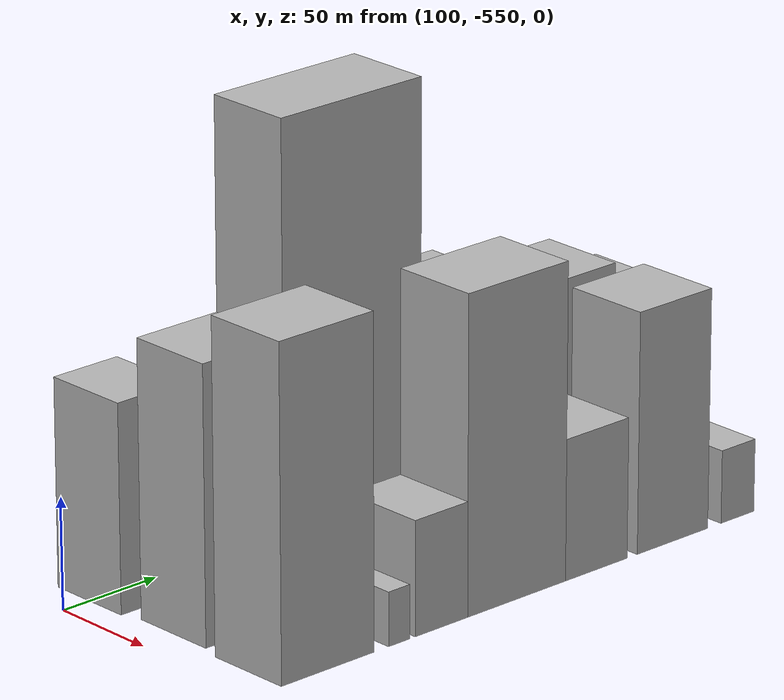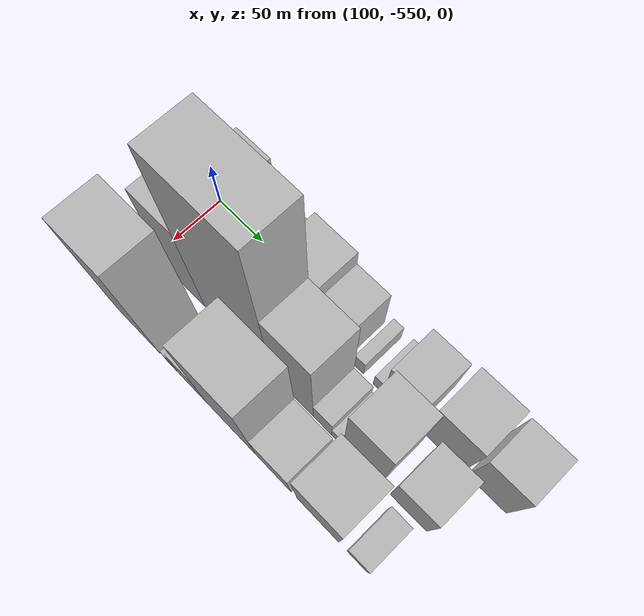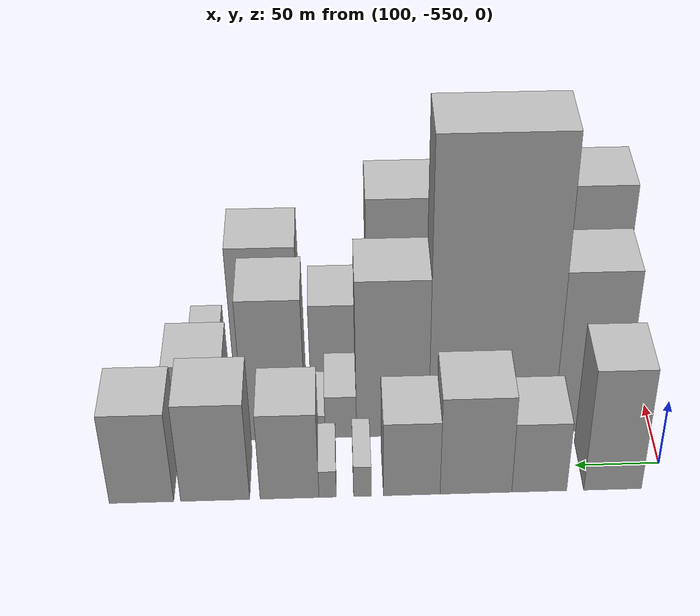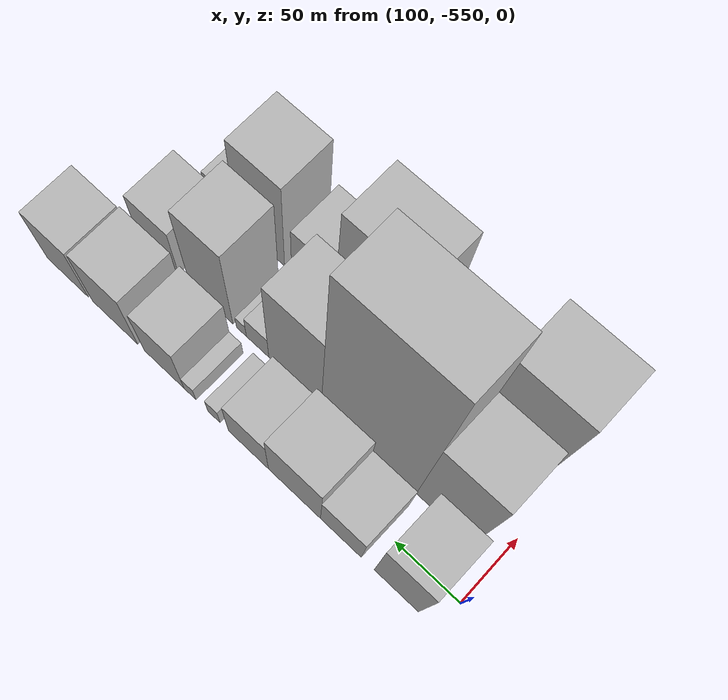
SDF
<sdf version="1.6">
 <world name="default">
  <model name="building_1">
   <static>1</static>
   <pose>100.0000 -519.0845 0 0.000000 0.000000 0.000000</pose>
   <link name="link">
    <pose>0 0 46.50 0 0 0</pose>
    <collision name="collision"><geometry><box><size>40.0000 33.8309 93.0000</size></box></geometry></collision>
    <visual name="visual">
     <cast_shadows>0</cast_shadows>
     <geometry><box><size>40.0000 33.8309 93.0000</size></box></geometry>
     <material>
      <script>
       <uri>model://HANNAS_wall/materials/scripts</uri>
       <uri>model://HANNAS_wall/materials/textures</uri>
       <name>vrc/HANNAS_wall</name>
      </script>
     </material>
    </visual>
   </link>
  </model>
  <model name="building_2">
   <static>1</static>
   <pose>100.0000 -476.1004 0 0.000000 0.000000 0.000000</pose>
   <link name="link">
    <pose>0 0 27.00 0 0 0</pose>
    <collision name="collision"><geometry><box><size>40.0000 32.1374 54.0000</size></box></geometry></collision>
    <visual name="visual">
     <cast_shadows>0</cast_shadows>
     <geometry><box><size>40.0000 32.1374 54.0000</size></box></geometry>
     <material>
      <script>
       <uri>model://HANNAS_wall/materials/scripts</uri>
       <uri>model://HANNAS_wall/materials/textures</uri>
       <name>vrc/HANNAS_wall</name>
      </script>
     </material>
    </visual>
   </link>
  </model>
  <model name="building_3">
   <static>1</static>
   <pose>100.0000 -439.1285 0 0.000000 0.000000 0.000000</pose>
   <link name="link">
    <pose>0 0 37.50 0 0 0</pose>
    <collision name="collision"><geometry><box><size>40.0000 41.8063 75.0000</size></box></geometry></collision>
    <visual name="visual">
     <cast_shadows>0</cast_shadows>
     <geometry><box><size>40.0000 41.8063 75.0000</size></box></geometry>
     <material>
      <script>
       <uri>model://HANNAS_wall/materials/scripts</uri>
       <uri>model://HANNAS_wall/materials/textures</uri>
       <name>vrc/HANNAS_wall</name>
      </script>
     </material>
    </visual>
   </link>
  </model>
  <model name="building_4">
   <static>1</static>
   <pose>100.0000 -401.7499 0 0.000000 0.000000 0.000000</pose>
   <link name="link">
    <pose>0 0 28.50 0 0 0</pose>
    <collision name="collision"><geometry><box><size>40.0000 32.9508 57.0000</size></box></geometry></collision>
    <visual name="visual">
     <cast_shadows>0</cast_shadows>
     <geometry><box><size>40.0000 32.9508 57.0000</size></box></geometry>
     <material>
      <script>
       <uri>model://HANNAS_wall/materials/scripts</uri>
       <uri>model://HANNAS_wall/materials/textures</uri>
       <name>vrc/HANNAS_wall</name>
      </script>
     </material>
    </visual>
   </link>
  </model>
  <model name="building_5">
   <static>1</static>
   <pose>100.0000 -373.0983 0 0.000000 0.000000 0.000000</pose>
   <link name="link">
    <pose>0 0 12.00 0 0 0</pose>
    <collision name="collision"><geometry><box><size>40.0000 10.3525 24.0000</size></box></geometry></collision>
    <visual name="visual">
     <cast_shadows>0</cast_shadows>
     <geometry><box><size>40.0000 10.3525 24.0000</size></box></geometry>
     <material>
      <script>
       <uri>model://HANNAS_wall/materials/scripts</uri>
       <uri>model://HANNAS_wall/materials/textures</uri>
       <name>vrc/HANNAS_wall</name>
      </script>
     </material>
    </visual>
   </link>
  </model>
  <model name="building_6">
   <static>1</static>
   <pose>100.0000 -352.8675 0 0.000000 0.000000 0.000000</pose>
   <link name="link">
    <pose>0 0 10.50 0 0 0</pose>
    <collision name="collision"><geometry><box><size>40.0000 10.1091 21.0000</size></box></geometry></collision>
    <visual name="visual">
     <cast_shadows>0</cast_shadows>
     <geometry><box><size>40.0000 10.1091 21.0000</size></box></geometry>
     <material>
      <script>
       <uri>model://HANNAS_wall/materials/scripts</uri>
       <uri>model://HANNAS_wall/materials/textures</uri>
       <name>vrc/HANNAS_wall</name>
      </script>
     </material>
    </visual>
   </link>
  </model>
  <model name="building_7">
   <static>1</static>
   <pose>100.0000 -330.7719 0 0.000000 0.000000 0.000000</pose>
   <link name="link">
    <pose>0 0 33.00 0 0 0</pose>
    <collision name="collision"><geometry><box><size>40.0000 34.0822 66.0000</size></box></geometry></collision>
    <visual name="visual">
     <cast_shadows>0</cast_shadows>
     <geometry><box><size>40.0000 34.0822 66.0000</size></box></geometry>
     <material>
      <script>
       <uri>model://HANNAS_wall/materials/scripts</uri>
       <uri>model://HANNAS_wall/materials/textures</uri>
       <name>vrc/HANNAS_wall</name>
      </script>
     </material>
    </visual>
   </link>
  </model>
  <model name="building_8">
   <static>1</static>
   <pose>100.0000 -287.7818 0 0.000000 0.000000 0.000000</pose>
   <link name="link">
    <pose>0 0 37.50 0 0 0</pose>
    <collision name="collision"><geometry><box><size>40.0000 39.8979 75.0000</size></box></geometry></collision>
    <visual name="visual">
     <cast_shadows>0</cast_shadows>
     <geometry><box><size>40.0000 39.8979 75.0000</size></box></geometry>
     <material>
      <script>
       <uri>model://HANNAS_wall/materials/scripts</uri>
       <uri>model://HANNAS_wall/materials/textures</uri>
       <name>vrc/HANNAS_wall</name>
      </script>
     </material>
    </visual>
   </link>
  </model>
  <model name="building_9">
   <static>1</static>
   <pose>100.0000 -245.2879 0 0.000000 0.000000 0.000000</pose>
   <link name="link">
    <pose>0 0 34.50 0 0 0</pose>
    <collision name="collision"><geometry><box><size>40.0000 37.0899 69.0000</size></box></geometry></collision>
    <visual name="visual">
     <cast_shadows>0</cast_shadows>
     <geometry><box><size>40.0000 37.0899 69.0000</size></box></geometry>
     <material>
      <script>
       <uri>model://HANNAS_wall/materials/scripts</uri>
       <uri>model://HANNAS_wall/materials/textures</uri>
       <name>vrc/HANNAS_wall</name>
      </script>
     </material>
    </visual>
   </link>
  </model>
  <model name="building_30">
   <static>1</static>
   <pose>149.0000 -511.6956 0 0.000000 0.000000 0.000000</pose>
   <link name="link">
    <pose>0 0 61.50 0 0 0</pose>
    <collision name="collision"><geometry><box><size>40.0000 42.6088 123.0000</size></box></geometry></collision>
    <visual name="visual">
     <cast_shadows>0</cast_shadows>
     <geometry><box><size>40.0000 42.6088 123.0000</size></box></geometry>
     <material>
      <script>
       <uri>model://HANNAS_wall/materials/scripts</uri>
       <uri>model://HANNAS_wall/materials/textures</uri>
       <name>vrc/HANNAS_wall</name>
      </script>
     </material>
    </visual>
   </link>
  </model>
  <model name="building_31">
   <static>1</static>
   <pose>149.0000 -452.3626 0 0.000000 0.000000 0.000000</pose>
   <link name="link">
    <pose>0 0 108.00 0 0 0</pose>
    <collision name="collision"><geometry><box><size>40.0000 76.0571 216.0000</size></box></geometry></collision>
    <visual name="visual">
     <cast_shadows>0</cast_shadows>
     <geometry><box><size>40.0000 76.0571 216.0000</size></box></geometry>
     <material>
      <script>
       <uri>model://HANNAS_wall/materials/scripts</uri>
       <uri>model://HANNAS_wall/materials/textures</uri>
       <name>vrc/HANNAS_wall</name>
      </script>
     </material>
    </visual>
   </link>
  </model>
  <model name="building_32">
   <static>1</static>
   <pose>149.0000 -392.5495 0 0.000000 0.000000 0.000000</pose>
   <link name="link">
    <pose>0 0 60.00 0 0 0</pose>
    <collision name="collision"><geometry><box><size>40.0000 43.5690 120.0000</size></box></geometry></collision>
    <visual name="visual">
     <cast_shadows>0</cast_shadows>
     <geometry><box><size>40.0000 43.5690 120.0000</size></box></geometry>
     <material>
      <script>
       <uri>model://HANNAS_wall/materials/scripts</uri>
       <uri>model://HANNAS_wall/materials/textures</uri>
       <name>vrc/HANNAS_wall</name>
      </script>
     </material>
    </visual>
   </link>
  </model>
  <model name="building_33">
   <static>1</static>
   <pose>149.0000 -361.2926 0 0.000000 0.000000 0.000000</pose>
   <link name="link">
    <pose>0 0 16.50 0 0 0</pose>
    <collision name="collision"><geometry><box><size>40.0000 18.9448 33.0000</size></box></geometry></collision>
    <visual name="visual">
     <cast_shadows>0</cast_shadows>
     <geometry><box><size>40.0000 18.9448 33.0000</size></box></geometry>
     <material>
      <script>
       <uri>model://HANNAS_wall/materials/scripts</uri>
       <uri>model://HANNAS_wall/materials/textures</uri>
       <name>vrc/HANNAS_wall</name>
      </script>
     </material>
    </visual>
   </link>
  </model>
  <model name="building_34">
   <static>1</static>
   <pose>149.0000 -347.5471 0 0.000000 0.000000 0.000000</pose>
   <link name="link">
    <pose>0 0 9.00 0 0 0</pose>
    <collision name="collision"><geometry><box><size>40.0000 8.5462 18.0000</size></box></geometry></collision>
    <visual name="visual">
     <cast_shadows>0</cast_shadows>
     <geometry><box><size>40.0000 8.5462 18.0000</size></box></geometry>
     <material>
      <script>
       <uri>model://HANNAS_wall/materials/scripts</uri>
       <uri>model://HANNAS_wall/materials/textures</uri>
       <name>vrc/HANNAS_wall</name>
      </script>
     </material>
    </visual>
   </link>
  </model>
  <model name="building_35">
   <static>1</static>
   <pose>149.0000 -321.5857 0 0.000000 0.000000 0.000000</pose>
   <link name="link">
    <pose>0 0 54.00 0 0 0</pose>
    <collision name="collision"><geometry><box><size>40.0000 37.3766 108.0000</size></box></geometry></collision>
    <visual name="visual">
     <cast_shadows>0</cast_shadows>
     <geometry><box><size>40.0000 37.3766 108.0000</size></box></geometry>
     <material>
      <script>
       <uri>model://HANNAS_wall/materials/scripts</uri>
       <uri>model://HANNAS_wall/materials/textures</uri>
       <name>vrc/HANNAS_wall</name>
      </script>
     </material>
    </visual>
   </link>
  </model>
  <model name="building_36">
   <static>1</static>
   <pose>149.0000 -275.1587 0 0.000000 0.000000 0.000000</pose>
   <link name="link">
    <pose>0 0 30.00 0 0 0</pose>
    <collision name="collision"><geometry><box><size>40.0000 35.4774 60.0000</size></box></geometry></collision>
    <visual name="visual">
     <cast_shadows>0</cast_shadows>
     <geometry><box><size>40.0000 35.4774 60.0000</size></box></geometry>
     <material>
      <script>
       <uri>model://HANNAS_wall/materials/scripts</uri>
       <uri>model://HANNAS_wall/materials/textures</uri>
       <name>vrc/HANNAS_wall</name>
      </script>
     </material>
    </visual>
   </link>
  </model>
  <model name="building_59">
   <static>1</static>
   <pose>198.0000 -510.9606 0 0.000000 0.000000 0.000000</pose>
   <link name="link">
    <pose>0 0 73.50 0 0 0</pose>
    <collision name="collision"><geometry><box><size>40.0000 50.0787 147.0000</size></box></geometry></collision>
    <visual name="visual">
     <cast_shadows>0</cast_shadows>
     <geometry><box><size>40.0000 50.0787 147.0000</size></box></geometry>
     <material>
      <script>
       <uri>model://HANNAS_wall/materials/scripts</uri>
       <uri>model://HANNAS_wall/materials/textures</uri>
       <name>vrc/HANNAS_wall</name>
      </script>
     </material>
    </visual>
   </link>
  </model>
  <model name="building_60">
   <static>1</static>
   <pose>198.0000 -472.0936 0 0.000000 0.000000 0.000000</pose>
   <link name="link">
    <pose>0 0 12.00 0 0 0</pose>
    <collision name="collision"><geometry><box><size>40.0000 11.6553 24.0000</size></box></geometry></collision>
    <visual name="visual">
     <cast_shadows>0</cast_shadows>
     <geometry><box><size>40.0000 11.6553 24.0000</size></box></geometry>
     <material>
      <script>
       <uri>model://HANNAS_wall/materials/scripts</uri>
       <uri>model://HANNAS_wall/materials/textures</uri>
       <name>vrc/HANNAS_wall</name>
      </script>
     </material>
    </visual>
   </link>
  </model>
  <model name="building_61">
   <static>1</static>
   <pose>198.0000 -448.6688 0 0.000000 0.000000 0.000000</pose>
   <link name="link">
    <pose>0 0 25.50 0 0 0</pose>
    <collision name="collision"><geometry><box><size>40.0000 29.1943 51.0000</size></box></geometry></collision>
    <visual name="visual">
     <cast_shadows>0</cast_shadows>
     <geometry><box><size>40.0000 29.1943 51.0000</size></box></geometry>
     <material>
      <script>
       <uri>model://HANNAS_wall/materials/scripts</uri>
       <uri>model://HANNAS_wall/materials/textures</uri>
       <name>vrc/HANNAS_wall</name>
      </script>
     </material>
    </visual>
   </link>
  </model>
  <model name="building_62">
   <static>1</static>
   <pose>198.0000 -406.2474 0 0.000000 0.000000 0.000000</pose>
   <link name="link">
    <pose>0 0 70.50 0 0 0</pose>
    <collision name="collision"><geometry><box><size>40.0000 55.6484 141.0000</size></box></geometry></collision>
    <visual name="visual">
     <cast_shadows>0</cast_shadows>
     <geometry><box><size>40.0000 55.6484 141.0000</size></box></geometry>
     <material>
      <script>
       <uri>model://HANNAS_wall/materials/scripts</uri>
       <uri>model://HANNAS_wall/materials/textures</uri>
       <name>vrc/HANNAS_wall</name>
      </script>
     </material>
    </visual>
   </link>
  </model>
  <model name="building_63">
   <static>1</static>
   <pose>198.0000 -360.5592 0 0.000000 0.000000 0.000000</pose>
   <link name="link">
    <pose>0 0 31.50 0 0 0</pose>
    <collision name="collision"><geometry><box><size>40.0000 35.7281 63.0000</size></box></geometry></collision>
    <visual name="visual">
     <cast_shadows>0</cast_shadows>
     <geometry><box><size>40.0000 35.7281 63.0000</size></box></geometry>
     <material>
      <script>
       <uri>model://HANNAS_wall/materials/scripts</uri>
       <uri>model://HANNAS_wall/materials/textures</uri>
       <name>vrc/HANNAS_wall</name>
      </script>
     </material>
    </visual>
   </link>
  </model>
  <model name="building_64">
   <static>1</static>
   <pose>198.0000 -315.8276 0 0.000000 0.000000 0.000000</pose>
   <link name="link">
    <pose>0 0 54.00 0 0 0</pose>
    <collision name="collision"><geometry><box><size>40.0000 41.7350 108.0000</size></box></geometry></collision>
    <visual name="visual">
     <cast_shadows>0</cast_shadows>
     <geometry><box><size>40.0000 41.7350 108.0000</size></box></geometry>
     <material>
      <script>
       <uri>model://HANNAS_wall/materials/scripts</uri>
       <uri>model://HANNAS_wall/materials/textures</uri>
       <name>vrc/HANNAS_wall</name>
      </script>
     </material>
    </visual>
   </link>
  </model>
  <model name="building_65">
   <static>1</static>
   <pose>198.0000 -277.0720 0 0.000000 0.000000 0.000000</pose>
   <link name="link">
    <pose>0 0 16.50 0 0 0</pose>
    <collision name="collision"><geometry><box><size>40.0000 19.7763 33.0000</size></box></geometry></collision>
    <visual name="visual">
     <cast_shadows>0</cast_shadows>
     <geometry><box><size>40.0000 19.7763 33.0000</size></box></geometry>
     <material>
      <script>
       <uri>model://HANNAS_wall/materials/scripts</uri>
       <uri>model://HANNAS_wall/materials/textures</uri>
       <name>vrc/HANNAS_wall</name>
      </script>
     </material>
    </visual>
   </link>
  </model>
 </world>
</sdf>
